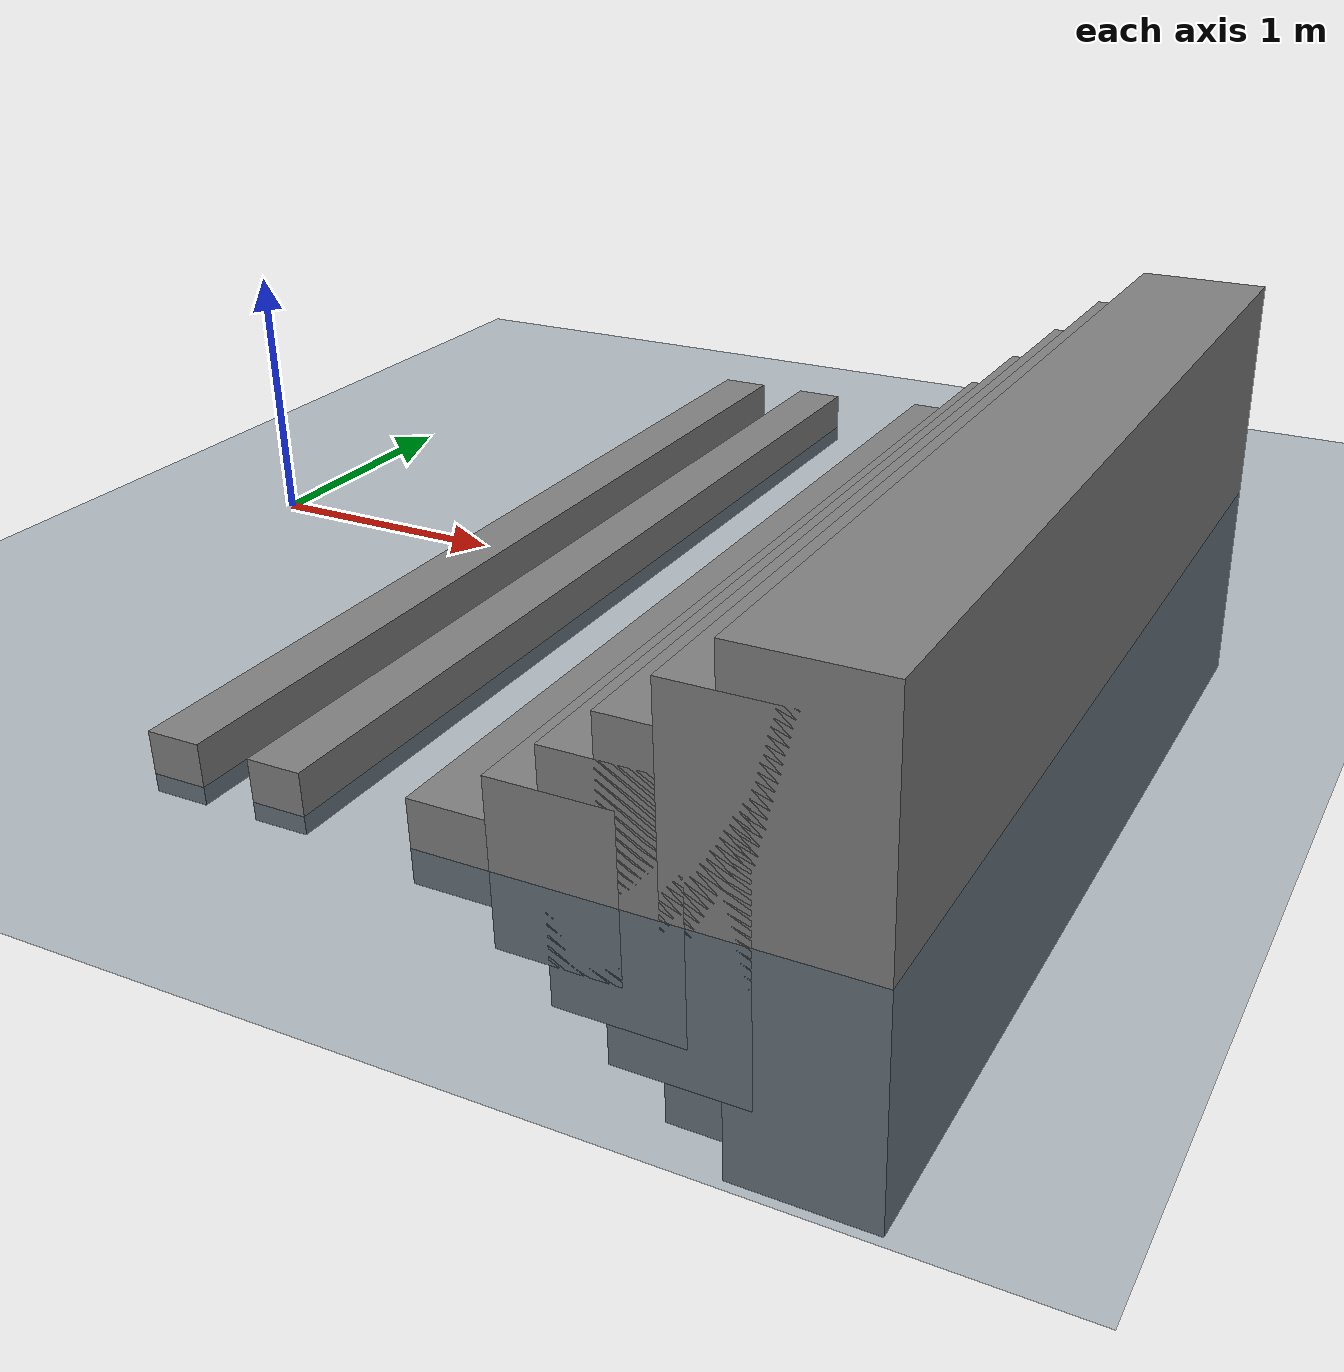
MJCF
<mujoco model="go2 scene">

  <statistic center="0 0 0.1" extent="0.8"/>
  <visual>
    <headlight diffuse="0.6 0.6 0.6" ambient="0.3 0.3 0.3" specular="0 0 0"/>
    <rgba haze="0.15 0.25 0.35 1"/>
    <global azimuth="-130" elevation="-20"/>
  </visual>

  <asset>
    <texture type="skybox" builtin="gradient" rgb1="0.3 0.5 0.7" rgb2="0 0 0" width="512" height="3072"/>
    <texture type="2d" name="groundplane" builtin="checker" mark="edge" rgb1="0.2 0.3 0.4" rgb2="0.1 0.2 0.3"
      markrgb="0.8 0.8 0.8" width="300" height="300"/>
    <material name="groundplane" texture="groundplane" texuniform="true" texrepeat="5 5" reflectance="0.2"/>
  </asset>

  <worldbody>
    <light pos="0 0 1.5" dir="0 0 -1" directional="true"/>
    <geom name="floor" size="0 0 0.05" type="plane" material="groundplane"/>

    <geom name="terrain_1" pos="1.2 0 0.04" type="box"  size="0.1 2 0.11" quat="1.0 0 0 0"/>
    <geom name="terrain_2" pos="1.6 0 0.04" type="box"  size="0.1 2 0.11" quat="1.0 0 0 0"/>

    <geom name="terrain_3" pos="2.3 0 0.02" type="box"  size="0.2 2 0.15" quat="1.0 0 0 0"/>
    <geom name="terrain_4" pos="2.6 0 0.02" type="box"  size="0.22 2 0.3" quat="1.0 0 0 0"/>
    <geom name="terrain_5" pos="2.8 0 0.02" type="box"  size="0.23 2 0.45" quat="1.0 0 0 0"/>
    <geom name="terrain_6" pos="3 0 0.02"   type="box"  size="0.24 2 0.6" quat="1.0 0 0 0"/>
    <geom name="terrain_7" pos="3.2 0 0.02" type="box"  size="0.25 2 0.75" quat="1.0 0 0 0"/>
    <geom name="terrain_9" pos="3.4 0 0.02" type="box"  size="0.26 2 0.9" quat="1.0 0 0 0"/>
  </worldbody>
</mujoco>
